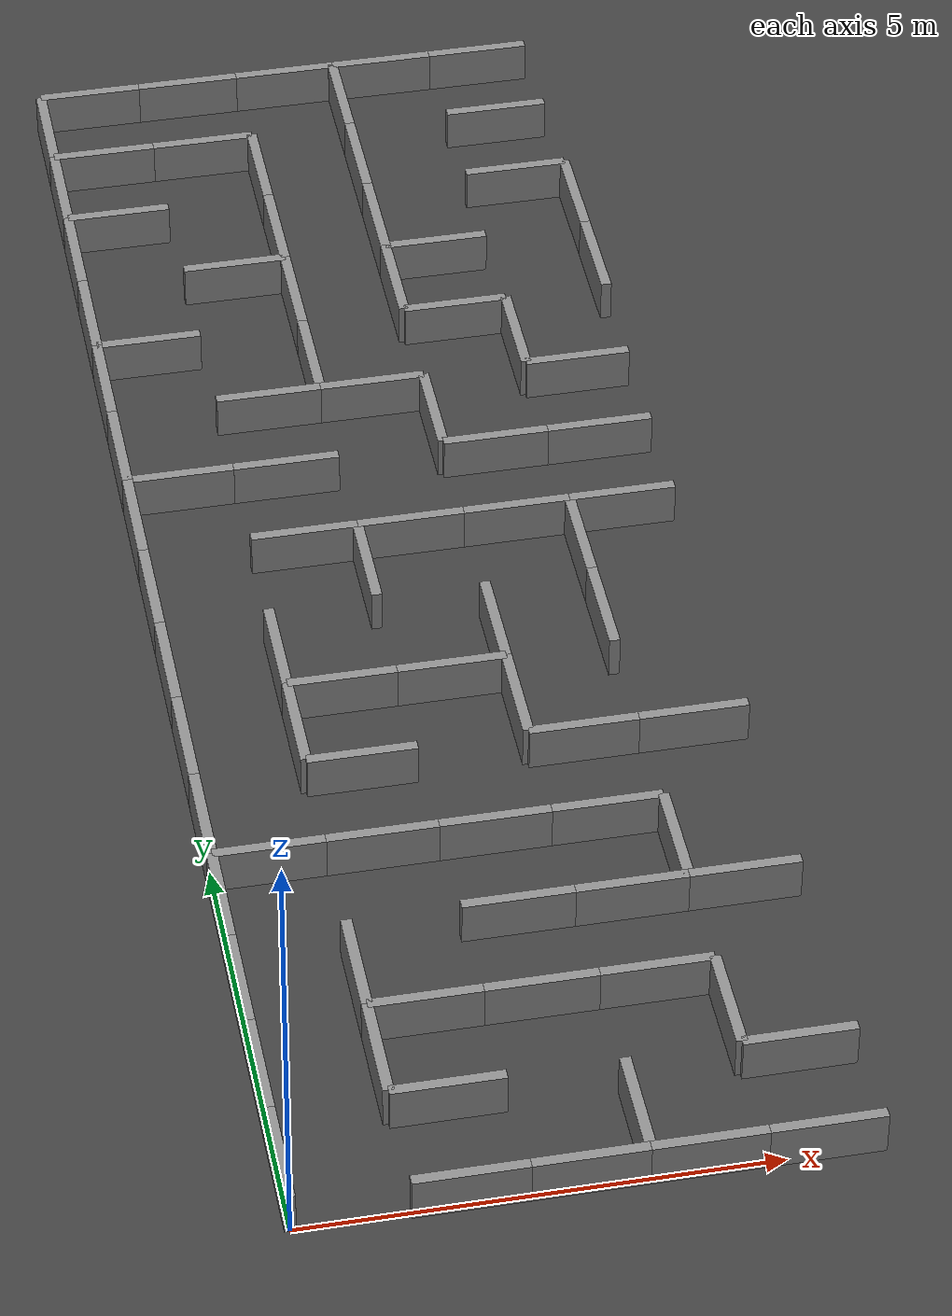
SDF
<sdf version="1.9">
 <world name="maze_world">
  <model name="ground_plane">
   <static>true</static>
   <link name="link">
    <collision name="col">
     <geometry><plane><normal>0 0 1</normal><size>500 500</size></plane></geometry>
     <surface><friction><ode><mu>1.0</mu><mu2>1.0</mu2></ode></friction></surface>
    </collision>
    <visual name="vis">
     <geometry><plane><normal>0 0 1</normal><size>500 500</size></plane></geometry>
     <material><ambient>0.25 0.25 0.25 1</ambient><diffuse>0.25 0.25 0.25 1</diffuse></material>
    </visual>
   </link>
  </model>
  <model name="maze_walls">
   <static>true</static>
   <link name="w0000">
    <pose>0.60000 16.80000 0.25000 0 0 0</pose>
    <collision name="col">
     <geometry><box><size>1.20000 0.12000 0.50000</size></box></geometry>
     <surface><friction><ode><mu>1.0</mu><mu2>1.0</mu2></ode></friction></surface>
    </collision>
    <visual name="vis">
     <geometry><box><size>1.20000 0.12000 0.50000</size></box></geometry>
     <material>
      <ambient>0.55 0.55 0.55 1</ambient>
      <diffuse>0.55 0.55 0.55 1</diffuse>
      <specular>0.1 0.1 0.1 1</specular>
     </material>
    </visual>
   </link>
   <link name="w0001">
    <pose>1.80000 16.80000 0.25000 0 0 0</pose>
    <collision name="col">
     <geometry><box><size>1.20000 0.12000 0.50000</size></box></geometry>
     <surface><friction><ode><mu>1.0</mu><mu2>1.0</mu2></ode></friction></surface>
    </collision>
    <visual name="vis">
     <geometry><box><size>1.20000 0.12000 0.50000</size></box></geometry>
     <material>
      <ambient>0.55 0.55 0.55 1</ambient>
      <diffuse>0.55 0.55 0.55 1</diffuse>
      <specular>0.1 0.1 0.1 1</specular>
     </material>
    </visual>
   </link>
   <link name="w0002">
    <pose>3.60000 17.40000 0.25000 0 0 0</pose>
    <collision name="col">
     <geometry><box><size>0.12000 1.20000 0.50000</size></box></geometry>
     <surface><friction><ode><mu>1.0</mu><mu2>1.0</mu2></ode></friction></surface>
    </collision>
    <visual name="vis">
     <geometry><box><size>0.12000 1.20000 0.50000</size></box></geometry>
     <material>
      <ambient>0.55 0.55 0.55 1</ambient>
      <diffuse>0.55 0.55 0.55 1</diffuse>
      <specular>0.1 0.1 0.1 1</specular>
     </material>
    </visual>
   </link>
   <link name="w0003">
    <pose>5.40000 16.80000 0.25000 0 0 0</pose>
    <collision name="col">
     <geometry><box><size>1.20000 0.12000 0.50000</size></box></geometry>
     <surface><friction><ode><mu>1.0</mu><mu2>1.0</mu2></ode></friction></surface>
    </collision>
    <visual name="vis">
     <geometry><box><size>1.20000 0.12000 0.50000</size></box></geometry>
     <material>
      <ambient>0.55 0.55 0.55 1</ambient>
      <diffuse>0.55 0.55 0.55 1</diffuse>
      <specular>0.1 0.1 0.1 1</specular>
     </material>
    </visual>
   </link>
   <link name="w0010">
    <pose>0.60000 15.60000 0.25000 0 0 0</pose>
    <collision name="col">
     <geometry><box><size>1.20000 0.12000 0.50000</size></box></geometry>
     <surface><friction><ode><mu>1.0</mu><mu2>1.0</mu2></ode></friction></surface>
    </collision>
    <visual name="vis">
     <geometry><box><size>1.20000 0.12000 0.50000</size></box></geometry>
     <material>
      <ambient>0.55 0.55 0.55 1</ambient>
      <diffuse>0.55 0.55 0.55 1</diffuse>
      <specular>0.1 0.1 0.1 1</specular>
     </material>
    </visual>
   </link>
   <link name="w0011">
    <pose>2.40000 16.20000 0.25000 0 0 0</pose>
    <collision name="col">
     <geometry><box><size>0.12000 1.20000 0.50000</size></box></geometry>
     <surface><friction><ode><mu>1.0</mu><mu2>1.0</mu2></ode></friction></surface>
    </collision>
    <visual name="vis">
     <geometry><box><size>0.12000 1.20000 0.50000</size></box></geometry>
     <material>
      <ambient>0.55 0.55 0.55 1</ambient>
      <diffuse>0.55 0.55 0.55 1</diffuse>
      <specular>0.1 0.1 0.1 1</specular>
     </material>
    </visual>
   </link>
   <link name="w0012">
    <pose>3.60000 16.20000 0.25000 0 0 0</pose>
    <collision name="col">
     <geometry><box><size>0.12000 1.20000 0.50000</size></box></geometry>
     <surface><friction><ode><mu>1.0</mu><mu2>1.0</mu2></ode></friction></surface>
    </collision>
    <visual name="vis">
     <geometry><box><size>0.12000 1.20000 0.50000</size></box></geometry>
     <material>
      <ambient>0.55 0.55 0.55 1</ambient>
      <diffuse>0.55 0.55 0.55 1</diffuse>
      <specular>0.1 0.1 0.1 1</specular>
     </material>
    </visual>
   </link>
   <link name="w0013">
    <pose>5.40000 15.60000 0.25000 0 0 0</pose>
    <collision name="col">
     <geometry><box><size>1.20000 0.12000 0.50000</size></box></geometry>
     <surface><friction><ode><mu>1.0</mu><mu2>1.0</mu2></ode></friction></surface>
    </collision>
    <visual name="vis">
     <geometry><box><size>1.20000 0.12000 0.50000</size></box></geometry>
     <material>
      <ambient>0.55 0.55 0.55 1</ambient>
      <diffuse>0.55 0.55 0.55 1</diffuse>
      <specular>0.1 0.1 0.1 1</specular>
     </material>
    </visual>
   </link>
   <link name="w0025">
    <pose>1.80000 14.40000 0.25000 0 0 0</pose>
    <collision name="col">
     <geometry><box><size>1.20000 0.12000 0.50000</size></box></geometry>
     <surface><friction><ode><mu>1.0</mu><mu2>1.0</mu2></ode></friction></surface>
    </collision>
    <visual name="vis">
     <geometry><box><size>1.20000 0.12000 0.50000</size></box></geometry>
     <material>
      <ambient>0.55 0.55 0.55 1</ambient>
      <diffuse>0.55 0.55 0.55 1</diffuse>
      <specular>0.1 0.1 0.1 1</specular>
     </material>
    </visual>
   </link>
   <link name="w0026">
    <pose>2.40000 15.00000 0.25000 0 0 0</pose>
    <collision name="col">
     <geometry><box><size>0.12000 1.20000 0.50000</size></box></geometry>
     <surface><friction><ode><mu>1.0</mu><mu2>1.0</mu2></ode></friction></surface>
    </collision>
    <visual name="vis">
     <geometry><box><size>0.12000 1.20000 0.50000</size></box></geometry>
     <material>
      <ambient>0.55 0.55 0.55 1</ambient>
      <diffuse>0.55 0.55 0.55 1</diffuse>
      <specular>0.1 0.1 0.1 1</specular>
     </material>
    </visual>
   </link>
   <link name="w0027">
    <pose>3.60000 15.00000 0.25000 0 0 0</pose>
    <collision name="col">
     <geometry><box><size>0.12000 1.20000 0.50000</size></box></geometry>
     <surface><friction><ode><mu>1.0</mu><mu2>1.0</mu2></ode></friction></surface>
    </collision>
    <visual name="vis">
     <geometry><box><size>0.12000 1.20000 0.50000</size></box></geometry>
     <material>
      <ambient>0.55 0.55 0.55 1</ambient>
      <diffuse>0.55 0.55 0.55 1</diffuse>
      <specular>0.1 0.1 0.1 1</specular>
     </material>
    </visual>
   </link>
   <link name="w0028">
    <pose>4.20000 14.40000 0.25000 0 0 0</pose>
    <collision name="col">
     <geometry><box><size>1.20000 0.12000 0.50000</size></box></geometry>
     <surface><friction><ode><mu>1.0</mu><mu2>1.0</mu2></ode></friction></surface>
    </collision>
    <visual name="vis">
     <geometry><box><size>1.20000 0.12000 0.50000</size></box></geometry>
     <material>
      <ambient>0.55 0.55 0.55 1</ambient>
      <diffuse>0.55 0.55 0.55 1</diffuse>
      <specular>0.1 0.1 0.1 1</specular>
     </material>
    </visual>
   </link>
   <link name="w0029">
    <pose>6.00000 15.00000 0.25000 0 0 0</pose>
    <collision name="col">
     <geometry><box><size>0.12000 1.20000 0.50000</size></box></geometry>
     <surface><friction><ode><mu>1.0</mu><mu2>1.0</mu2></ode></friction></surface>
    </collision>
    <visual name="vis">
     <geometry><box><size>0.12000 1.20000 0.50000</size></box></geometry>
     <material>
      <ambient>0.55 0.55 0.55 1</ambient>
      <diffuse>0.55 0.55 0.55 1</diffuse>
      <specular>0.1 0.1 0.1 1</specular>
     </material>
    </visual>
   </link>
   <link name="w0042">
    <pose>0.60000 13.20000 0.25000 0 0 0</pose>
    <collision name="col">
     <geometry><box><size>1.20000 0.12000 0.50000</size></box></geometry>
     <surface><friction><ode><mu>1.0</mu><mu2>1.0</mu2></ode></friction></surface>
    </collision>
    <visual name="vis">
     <geometry><box><size>1.20000 0.12000 0.50000</size></box></geometry>
     <material>
      <ambient>0.55 0.55 0.55 1</ambient>
      <diffuse>0.55 0.55 0.55 1</diffuse>
      <specular>0.1 0.1 0.1 1</specular>
     </material>
    </visual>
   </link>
   <link name="w0043">
    <pose>2.40000 13.80000 0.25000 0 0 0</pose>
    <collision name="col">
     <geometry><box><size>0.12000 1.20000 0.50000</size></box></geometry>
     <surface><friction><ode><mu>1.0</mu><mu2>1.0</mu2></ode></friction></surface>
    </collision>
    <visual name="vis">
     <geometry><box><size>0.12000 1.20000 0.50000</size></box></geometry>
     <material>
      <ambient>0.55 0.55 0.55 1</ambient>
      <diffuse>0.55 0.55 0.55 1</diffuse>
      <specular>0.1 0.1 0.1 1</specular>
     </material>
    </visual>
   </link>
   <link name="w0044">
    <pose>3.60000 13.80000 0.25000 0 0 0</pose>
    <collision name="col">
     <geometry><box><size>0.12000 1.20000 0.50000</size></box></geometry>
     <surface><friction><ode><mu>1.0</mu><mu2>1.0</mu2></ode></friction></surface>
    </collision>
    <visual name="vis">
     <geometry><box><size>0.12000 1.20000 0.50000</size></box></geometry>
     <material>
      <ambient>0.55 0.55 0.55 1</ambient>
      <diffuse>0.55 0.55 0.55 1</diffuse>
      <specular>0.1 0.1 0.1 1</specular>
     </material>
    </visual>
   </link>
   <link name="w0045">
    <pose>4.20000 13.20000 0.25000 0 0 0</pose>
    <collision name="col">
     <geometry><box><size>1.20000 0.12000 0.50000</size></box></geometry>
     <surface><friction><ode><mu>1.0</mu><mu2>1.0</mu2></ode></friction></surface>
    </collision>
    <visual name="vis">
     <geometry><box><size>1.20000 0.12000 0.50000</size></box></geometry>
     <material>
      <ambient>0.55 0.55 0.55 1</ambient>
      <diffuse>0.55 0.55 0.55 1</diffuse>
      <specular>0.1 0.1 0.1 1</specular>
     </material>
    </visual>
   </link>
   <link name="w0046">
    <pose>6.00000 13.80000 0.25000 0 0 0</pose>
    <collision name="col">
     <geometry><box><size>0.12000 1.20000 0.50000</size></box></geometry>
     <surface><friction><ode><mu>1.0</mu><mu2>1.0</mu2></ode></friction></surface>
    </collision>
    <visual name="vis">
     <geometry><box><size>0.12000 1.20000 0.50000</size></box></geometry>
     <material>
      <ambient>0.55 0.55 0.55 1</ambient>
      <diffuse>0.55 0.55 0.55 1</diffuse>
      <specular>0.1 0.1 0.1 1</specular>
     </material>
    </visual>
   </link>
   <link name="w0056">
    <pose>1.80000 12.00000 0.25000 0 0 0</pose>
    <collision name="col">
     <geometry><box><size>1.20000 0.12000 0.50000</size></box></geometry>
     <surface><friction><ode><mu>1.0</mu><mu2>1.0</mu2></ode></friction></surface>
    </collision>
    <visual name="vis">
     <geometry><box><size>1.20000 0.12000 0.50000</size></box></geometry>
     <material>
      <ambient>0.55 0.55 0.55 1</ambient>
      <diffuse>0.55 0.55 0.55 1</diffuse>
      <specular>0.1 0.1 0.1 1</specular>
     </material>
    </visual>
   </link>
   <link name="w0057">
    <pose>2.40000 12.60000 0.25000 0 0 0</pose>
    <collision name="col">
     <geometry><box><size>0.12000 1.20000 0.50000</size></box></geometry>
     <surface><friction><ode><mu>1.0</mu><mu2>1.0</mu2></ode></friction></surface>
    </collision>
    <visual name="vis">
     <geometry><box><size>0.12000 1.20000 0.50000</size></box></geometry>
     <material>
      <ambient>0.55 0.55 0.55 1</ambient>
      <diffuse>0.55 0.55 0.55 1</diffuse>
      <specular>0.1 0.1 0.1 1</specular>
     </material>
    </visual>
   </link>
   <link name="w0058">
    <pose>3.00000 12.00000 0.25000 0 0 0</pose>
    <collision name="col">
     <geometry><box><size>1.20000 0.12000 0.50000</size></box></geometry>
     <surface><friction><ode><mu>1.0</mu><mu2>1.0</mu2></ode></friction></surface>
    </collision>
    <visual name="vis">
     <geometry><box><size>1.20000 0.12000 0.50000</size></box></geometry>
     <material>
      <ambient>0.55 0.55 0.55 1</ambient>
      <diffuse>0.55 0.55 0.55 1</diffuse>
      <specular>0.1 0.1 0.1 1</specular>
     </material>
    </visual>
   </link>
   <link name="w0059">
    <pose>4.80000 12.60000 0.25000 0 0 0</pose>
    <collision name="col">
     <geometry><box><size>0.12000 1.20000 0.50000</size></box></geometry>
     <surface><friction><ode><mu>1.0</mu><mu2>1.0</mu2></ode></friction></surface>
    </collision>
    <visual name="vis">
     <geometry><box><size>0.12000 1.20000 0.50000</size></box></geometry>
     <material>
      <ambient>0.55 0.55 0.55 1</ambient>
      <diffuse>0.55 0.55 0.55 1</diffuse>
      <specular>0.1 0.1 0.1 1</specular>
     </material>
    </visual>
   </link>
   <link name="w0060">
    <pose>5.40000 12.00000 0.25000 0 0 0</pose>
    <collision name="col">
     <geometry><box><size>1.20000 0.12000 0.50000</size></box></geometry>
     <surface><friction><ode><mu>1.0</mu><mu2>1.0</mu2></ode></friction></surface>
    </collision>
    <visual name="vis">
     <geometry><box><size>1.20000 0.12000 0.50000</size></box></geometry>
     <material>
      <ambient>0.55 0.55 0.55 1</ambient>
      <diffuse>0.55 0.55 0.55 1</diffuse>
      <specular>0.1 0.1 0.1 1</specular>
     </material>
    </visual>
   </link>
   <link name="w0072">
    <pose>0.60000 10.80000 0.25000 0 0 0</pose>
    <collision name="col">
     <geometry><box><size>1.20000 0.12000 0.50000</size></box></geometry>
     <surface><friction><ode><mu>1.0</mu><mu2>1.0</mu2></ode></friction></surface>
    </collision>
    <visual name="vis">
     <geometry><box><size>1.20000 0.12000 0.50000</size></box></geometry>
     <material>
      <ambient>0.55 0.55 0.55 1</ambient>
      <diffuse>0.55 0.55 0.55 1</diffuse>
      <specular>0.1 0.1 0.1 1</specular>
     </material>
    </visual>
   </link>
   <link name="w0073">
    <pose>1.80000 10.80000 0.25000 0 0 0</pose>
    <collision name="col">
     <geometry><box><size>1.20000 0.12000 0.50000</size></box></geometry>
     <surface><friction><ode><mu>1.0</mu><mu2>1.0</mu2></ode></friction></surface>
    </collision>
    <visual name="vis">
     <geometry><box><size>1.20000 0.12000 0.50000</size></box></geometry>
     <material>
      <ambient>0.55 0.55 0.55 1</ambient>
      <diffuse>0.55 0.55 0.55 1</diffuse>
      <specular>0.1 0.1 0.1 1</specular>
     </material>
    </visual>
   </link>
   <link name="w0074">
    <pose>3.60000 11.40000 0.25000 0 0 0</pose>
    <collision name="col">
     <geometry><box><size>0.12000 1.20000 0.50000</size></box></geometry>
     <surface><friction><ode><mu>1.0</mu><mu2>1.0</mu2></ode></friction></surface>
    </collision>
    <visual name="vis">
     <geometry><box><size>0.12000 1.20000 0.50000</size></box></geometry>
     <material>
      <ambient>0.55 0.55 0.55 1</ambient>
      <diffuse>0.55 0.55 0.55 1</diffuse>
      <specular>0.1 0.1 0.1 1</specular>
     </material>
    </visual>
   </link>
   <link name="w0075">
    <pose>4.20000 10.80000 0.25000 0 0 0</pose>
    <collision name="col">
     <geometry><box><size>1.20000 0.12000 0.50000</size></box></geometry>
     <surface><friction><ode><mu>1.0</mu><mu2>1.0</mu2></ode></friction></surface>
    </collision>
    <visual name="vis">
     <geometry><box><size>1.20000 0.12000 0.50000</size></box></geometry>
     <material>
      <ambient>0.55 0.55 0.55 1</ambient>
      <diffuse>0.55 0.55 0.55 1</diffuse>
      <specular>0.1 0.1 0.1 1</specular>
     </material>
    </visual>
   </link>
   <link name="w0076">
    <pose>5.40000 10.80000 0.25000 0 0 0</pose>
    <collision name="col">
     <geometry><box><size>1.20000 0.12000 0.50000</size></box></geometry>
     <surface><friction><ode><mu>1.0</mu><mu2>1.0</mu2></ode></friction></surface>
    </collision>
    <visual name="vis">
     <geometry><box><size>1.20000 0.12000 0.50000</size></box></geometry>
     <material>
      <ambient>0.55 0.55 0.55 1</ambient>
      <diffuse>0.55 0.55 0.55 1</diffuse>
      <specular>0.1 0.1 0.1 1</specular>
     </material>
    </visual>
   </link>
   <link name="w0087">
    <pose>1.80000 9.60000 0.25000 0 0 0</pose>
    <collision name="col">
     <geometry><box><size>1.20000 0.12000 0.50000</size></box></geometry>
     <surface><friction><ode><mu>1.0</mu><mu2>1.0</mu2></ode></friction></surface>
    </collision>
    <visual name="vis">
     <geometry><box><size>1.20000 0.12000 0.50000</size></box></geometry>
     <material>
      <ambient>0.55 0.55 0.55 1</ambient>
      <diffuse>0.55 0.55 0.55 1</diffuse>
      <specular>0.1 0.1 0.1 1</specular>
     </material>
    </visual>
   </link>
   <link name="w0088">
    <pose>3.00000 9.60000 0.25000 0 0 0</pose>
    <collision name="col">
     <geometry><box><size>1.20000 0.12000 0.50000</size></box></geometry>
     <surface><friction><ode><mu>1.0</mu><mu2>1.0</mu2></ode></friction></surface>
    </collision>
    <visual name="vis">
     <geometry><box><size>1.20000 0.12000 0.50000</size></box></geometry>
     <material>
      <ambient>0.55 0.55 0.55 1</ambient>
      <diffuse>0.55 0.55 0.55 1</diffuse>
      <specular>0.1 0.1 0.1 1</specular>
     </material>
    </visual>
   </link>
   <link name="w0089">
    <pose>4.20000 9.60000 0.25000 0 0 0</pose>
    <collision name="col">
     <geometry><box><size>1.20000 0.12000 0.50000</size></box></geometry>
     <surface><friction><ode><mu>1.0</mu><mu2>1.0</mu2></ode></friction></surface>
    </collision>
    <visual name="vis">
     <geometry><box><size>1.20000 0.12000 0.50000</size></box></geometry>
     <material>
      <ambient>0.55 0.55 0.55 1</ambient>
      <diffuse>0.55 0.55 0.55 1</diffuse>
      <specular>0.1 0.1 0.1 1</specular>
     </material>
    </visual>
   </link>
   <link name="w0090">
    <pose>5.40000 9.60000 0.25000 0 0 0</pose>
    <collision name="col">
     <geometry><box><size>1.20000 0.12000 0.50000</size></box></geometry>
     <surface><friction><ode><mu>1.0</mu><mu2>1.0</mu2></ode></friction></surface>
    </collision>
    <visual name="vis">
     <geometry><box><size>1.20000 0.12000 0.50000</size></box></geometry>
     <material>
      <ambient>0.55 0.55 0.55 1</ambient>
      <diffuse>0.55 0.55 0.55 1</diffuse>
      <specular>0.1 0.1 0.1 1</specular>
     </material>
    </visual>
   </link>
   <link name="w0102">
    <pose>2.40000 9.00000 0.25000 0 0 0</pose>
    <collision name="col">
     <geometry><box><size>0.12000 1.20000 0.50000</size></box></geometry>
     <surface><friction><ode><mu>1.0</mu><mu2>1.0</mu2></ode></friction></surface>
    </collision>
    <visual name="vis">
     <geometry><box><size>0.12000 1.20000 0.50000</size></box></geometry>
     <material>
      <ambient>0.55 0.55 0.55 1</ambient>
      <diffuse>0.55 0.55 0.55 1</diffuse>
      <specular>0.1 0.1 0.1 1</specular>
     </material>
    </visual>
   </link>
   <link name="w0103">
    <pose>4.80000 9.00000 0.25000 0 0 0</pose>
    <collision name="col">
     <geometry><box><size>0.12000 1.20000 0.50000</size></box></geometry>
     <surface><friction><ode><mu>1.0</mu><mu2>1.0</mu2></ode></friction></surface>
    </collision>
    <visual name="vis">
     <geometry><box><size>0.12000 1.20000 0.50000</size></box></geometry>
     <material>
      <ambient>0.55 0.55 0.55 1</ambient>
      <diffuse>0.55 0.55 0.55 1</diffuse>
      <specular>0.1 0.1 0.1 1</specular>
     </material>
    </visual>
   </link>
   <link name="w0116">
    <pose>1.20000 7.80000 0.25000 0 0 0</pose>
    <collision name="col">
     <geometry><box><size>0.12000 1.20000 0.50000</size></box></geometry>
     <surface><friction><ode><mu>1.0</mu><mu2>1.0</mu2></ode></friction></surface>
    </collision>
    <visual name="vis">
     <geometry><box><size>0.12000 1.20000 0.50000</size></box></geometry>
     <material>
      <ambient>0.55 0.55 0.55 1</ambient>
      <diffuse>0.55 0.55 0.55 1</diffuse>
      <specular>0.1 0.1 0.1 1</specular>
     </material>
    </visual>
   </link>
   <link name="w0117">
    <pose>1.80000 7.20000 0.25000 0 0 0</pose>
    <collision name="col">
     <geometry><box><size>1.20000 0.12000 0.50000</size></box></geometry>
     <surface><friction><ode><mu>1.0</mu><mu2>1.0</mu2></ode></friction></surface>
    </collision>
    <visual name="vis">
     <geometry><box><size>1.20000 0.12000 0.50000</size></box></geometry>
     <material>
      <ambient>0.55 0.55 0.55 1</ambient>
      <diffuse>0.55 0.55 0.55 1</diffuse>
      <specular>0.1 0.1 0.1 1</specular>
     </material>
    </visual>
   </link>
   <link name="w0118">
    <pose>3.00000 7.20000 0.25000 0 0 0</pose>
    <collision name="col">
     <geometry><box><size>1.20000 0.12000 0.50000</size></box></geometry>
     <surface><friction><ode><mu>1.0</mu><mu2>1.0</mu2></ode></friction></surface>
    </collision>
    <visual name="vis">
     <geometry><box><size>1.20000 0.12000 0.50000</size></box></geometry>
     <material>
      <ambient>0.55 0.55 0.55 1</ambient>
      <diffuse>0.55 0.55 0.55 1</diffuse>
      <specular>0.1 0.1 0.1 1</specular>
     </material>
    </visual>
   </link>
   <link name="w0119">
    <pose>3.60000 7.80000 0.25000 0 0 0</pose>
    <collision name="col">
     <geometry><box><size>0.12000 1.20000 0.50000</size></box></geometry>
     <surface><friction><ode><mu>1.0</mu><mu2>1.0</mu2></ode></friction></surface>
    </collision>
    <visual name="vis">
     <geometry><box><size>0.12000 1.20000 0.50000</size></box></geometry>
     <material>
      <ambient>0.55 0.55 0.55 1</ambient>
      <diffuse>0.55 0.55 0.55 1</diffuse>
      <specular>0.1 0.1 0.1 1</specular>
     </material>
    </visual>
   </link>
   <link name="w0120">
    <pose>4.80000 7.80000 0.25000 0 0 0</pose>
    <collision name="col">
     <geometry><box><size>0.12000 1.20000 0.50000</size></box></geometry>
     <surface><friction><ode><mu>1.0</mu><mu2>1.0</mu2></ode></friction></surface>
    </collision>
    <visual name="vis">
     <geometry><box><size>0.12000 1.20000 0.50000</size></box></geometry>
     <material>
      <ambient>0.55 0.55 0.55 1</ambient>
      <diffuse>0.55 0.55 0.55 1</diffuse>
      <specular>0.1 0.1 0.1 1</specular>
     </material>
    </visual>
   </link>
   <link name="w0131">
    <pose>1.20000 6.60000 0.25000 0 0 0</pose>
    <collision name="col">
     <geometry><box><size>0.12000 1.20000 0.50000</size></box></geometry>
     <surface><friction><ode><mu>1.0</mu><mu2>1.0</mu2></ode></friction></surface>
    </collision>
    <visual name="vis">
     <geometry><box><size>0.12000 1.20000 0.50000</size></box></geometry>
     <material>
      <ambient>0.55 0.55 0.55 1</ambient>
      <diffuse>0.55 0.55 0.55 1</diffuse>
      <specular>0.1 0.1 0.1 1</specular>
     </material>
    </visual>
   </link>
   <link name="w0132">
    <pose>1.80000 6.00000 0.25000 0 0 0</pose>
    <collision name="col">
     <geometry><box><size>1.20000 0.12000 0.50000</size></box></geometry>
     <surface><friction><ode><mu>1.0</mu><mu2>1.0</mu2></ode></friction></surface>
    </collision>
    <visual name="vis">
     <geometry><box><size>1.20000 0.12000 0.50000</size></box></geometry>
     <material>
      <ambient>0.55 0.55 0.55 1</ambient>
      <diffuse>0.55 0.55 0.55 1</diffuse>
      <specular>0.1 0.1 0.1 1</specular>
     </material>
    </visual>
   </link>
   <link name="w0133">
    <pose>3.60000 6.60000 0.25000 0 0 0</pose>
    <collision name="col">
     <geometry><box><size>0.12000 1.20000 0.50000</size></box></geometry>
     <surface><friction><ode><mu>1.0</mu><mu2>1.0</mu2></ode></friction></surface>
    </collision>
    <visual name="vis">
     <geometry><box><size>0.12000 1.20000 0.50000</size></box></geometry>
     <material>
      <ambient>0.55 0.55 0.55 1</ambient>
      <diffuse>0.55 0.55 0.55 1</diffuse>
      <specular>0.1 0.1 0.1 1</specular>
     </material>
    </visual>
   </link>
   <link name="w0134">
    <pose>4.20000 6.00000 0.25000 0 0 0</pose>
    <collision name="col">
     <geometry><box><size>1.20000 0.12000 0.50000</size></box></geometry>
     <surface><friction><ode><mu>1.0</mu><mu2>1.0</mu2></ode></friction></surface>
    </collision>
    <visual name="vis">
     <geometry><box><size>1.20000 0.12000 0.50000</size></box></geometry>
     <material>
      <ambient>0.55 0.55 0.55 1</ambient>
      <diffuse>0.55 0.55 0.55 1</diffuse>
      <specular>0.1 0.1 0.1 1</specular>
     </material>
    </visual>
   </link>
   <link name="w0135">
    <pose>5.40000 6.00000 0.25000 0 0 0</pose>
    <collision name="col">
     <geometry><box><size>1.20000 0.12000 0.50000</size></box></geometry>
     <surface><friction><ode><mu>1.0</mu><mu2>1.0</mu2></ode></friction></surface>
    </collision>
    <visual name="vis">
     <geometry><box><size>1.20000 0.12000 0.50000</size></box></geometry>
     <material>
      <ambient>0.55 0.55 0.55 1</ambient>
      <diffuse>0.55 0.55 0.55 1</diffuse>
      <specular>0.1 0.1 0.1 1</specular>
     </material>
    </visual>
   </link>
   <link name="w0146">
    <pose>0.60000 4.80000 0.25000 0 0 0</pose>
    <collision name="col">
     <geometry><box><size>1.20000 0.12000 0.50000</size></box></geometry>
     <surface><friction><ode><mu>1.0</mu><mu2>1.0</mu2></ode></friction></surface>
    </collision>
    <visual name="vis">
     <geometry><box><size>1.20000 0.12000 0.50000</size></box></geometry>
     <material>
      <ambient>0.55 0.55 0.55 1</ambient>
      <diffuse>0.55 0.55 0.55 1</diffuse>
      <specular>0.1 0.1 0.1 1</specular>
     </material>
    </visual>
   </link>
   <link name="w0147">
    <pose>1.80000 4.80000 0.25000 0 0 0</pose>
    <collision name="col">
     <geometry><box><size>1.20000 0.12000 0.50000</size></box></geometry>
     <surface><friction><ode><mu>1.0</mu><mu2>1.0</mu2></ode></friction></surface>
    </collision>
    <visual name="vis">
     <geometry><box><size>1.20000 0.12000 0.50000</size></box></geometry>
     <material>
      <ambient>0.55 0.55 0.55 1</ambient>
      <diffuse>0.55 0.55 0.55 1</diffuse>
      <specular>0.1 0.1 0.1 1</specular>
     </material>
    </visual>
   </link>
   <link name="w0148">
    <pose>3.00000 4.80000 0.25000 0 0 0</pose>
    <collision name="col">
     <geometry><box><size>1.20000 0.12000 0.50000</size></box></geometry>
     <surface><friction><ode><mu>1.0</mu><mu2>1.0</mu2></ode></friction></surface>
    </collision>
    <visual name="vis">
     <geometry><box><size>1.20000 0.12000 0.50000</size></box></geometry>
     <material>
      <ambient>0.55 0.55 0.55 1</ambient>
      <diffuse>0.55 0.55 0.55 1</diffuse>
      <specular>0.1 0.1 0.1 1</specular>
     </material>
    </visual>
   </link>
   <link name="w0149">
    <pose>4.20000 4.80000 0.25000 0 0 0</pose>
    <collision name="col">
     <geometry><box><size>1.20000 0.12000 0.50000</size></box></geometry>
     <surface><friction><ode><mu>1.0</mu><mu2>1.0</mu2></ode></friction></surface>
    </collision>
    <visual name="vis">
     <geometry><box><size>1.20000 0.12000 0.50000</size></box></geometry>
     <material>
      <ambient>0.55 0.55 0.55 1</ambient>
      <diffuse>0.55 0.55 0.55 1</diffuse>
      <specular>0.1 0.1 0.1 1</specular>
     </material>
    </visual>
   </link>
   <link name="w0163">
    <pose>3.00000 3.60000 0.25000 0 0 0</pose>
    <collision name="col">
     <geometry><box><size>1.20000 0.12000 0.50000</size></box></geometry>
     <surface><friction><ode><mu>1.0</mu><mu2>1.0</mu2></ode></friction></surface>
    </collision>
    <visual name="vis">
     <geometry><box><size>1.20000 0.12000 0.50000</size></box></geometry>
     <material>
      <ambient>0.55 0.55 0.55 1</ambient>
      <diffuse>0.55 0.55 0.55 1</diffuse>
      <specular>0.1 0.1 0.1 1</specular>
     </material>
    </visual>
   </link>
   <link name="w0164">
    <pose>4.20000 3.60000 0.25000 0 0 0</pose>
    <collision name="col">
     <geometry><box><size>1.20000 0.12000 0.50000</size></box></geometry>
     <surface><friction><ode><mu>1.0</mu><mu2>1.0</mu2></ode></friction></surface>
    </collision>
    <visual name="vis">
     <geometry><box><size>1.20000 0.12000 0.50000</size></box></geometry>
     <material>
      <ambient>0.55 0.55 0.55 1</ambient>
      <diffuse>0.55 0.55 0.55 1</diffuse>
      <specular>0.1 0.1 0.1 1</specular>
     </material>
    </visual>
   </link>
   <link name="w0165">
    <pose>4.80000 4.20000 0.25000 0 0 0</pose>
    <collision name="col">
     <geometry><box><size>0.12000 1.20000 0.50000</size></box></geometry>
     <surface><friction><ode><mu>1.0</mu><mu2>1.0</mu2></ode></friction></surface>
    </collision>
    <visual name="vis">
     <geometry><box><size>0.12000 1.20000 0.50000</size></box></geometry>
     <material>
      <ambient>0.55 0.55 0.55 1</ambient>
      <diffuse>0.55 0.55 0.55 1</diffuse>
      <specular>0.1 0.1 0.1 1</specular>
     </material>
    </visual>
   </link>
   <link name="w0166">
    <pose>5.40000 3.60000 0.25000 0 0 0</pose>
    <collision name="col">
     <geometry><box><size>1.20000 0.12000 0.50000</size></box></geometry>
     <surface><friction><ode><mu>1.0</mu><mu2>1.0</mu2></ode></friction></surface>
    </collision>
    <visual name="vis">
     <geometry><box><size>1.20000 0.12000 0.50000</size></box></geometry>
     <material>
      <ambient>0.55 0.55 0.55 1</ambient>
      <diffuse>0.55 0.55 0.55 1</diffuse>
      <specular>0.1 0.1 0.1 1</specular>
     </material>
    </visual>
   </link>
   <link name="w0176">
    <pose>1.20000 3.00000 0.25000 0 0 0</pose>
    <collision name="col">
     <geometry><box><size>0.12000 1.20000 0.50000</size></box></geometry>
     <surface><friction><ode><mu>1.0</mu><mu2>1.0</mu2></ode></friction></surface>
    </collision>
    <visual name="vis">
     <geometry><box><size>0.12000 1.20000 0.50000</size></box></geometry>
     <material>
      <ambient>0.55 0.55 0.55 1</ambient>
      <diffuse>0.55 0.55 0.55 1</diffuse>
      <specular>0.1 0.1 0.1 1</specular>
     </material>
    </visual>
   </link>
   <link name="w0177">
    <pose>1.80000 2.40000 0.25000 0 0 0</pose>
    <collision name="col">
     <geometry><box><size>1.20000 0.12000 0.50000</size></box></geometry>
     <surface><friction><ode><mu>1.0</mu><mu2>1.0</mu2></ode></friction></surface>
    </collision>
    <visual name="vis">
     <geometry><box><size>1.20000 0.12000 0.50000</size></box></geometry>
     <material>
      <ambient>0.55 0.55 0.55 1</ambient>
      <diffuse>0.55 0.55 0.55 1</diffuse>
      <specular>0.1 0.1 0.1 1</specular>
     </material>
    </visual>
   </link>
   <link name="w0178">
    <pose>3.00000 2.40000 0.25000 0 0 0</pose>
    <collision name="col">
     <geometry><box><size>1.20000 0.12000 0.50000</size></box></geometry>
     <surface><friction><ode><mu>1.0</mu><mu2>1.0</mu2></ode></friction></surface>
    </collision>
    <visual name="vis">
     <geometry><box><size>1.20000 0.12000 0.50000</size></box></geometry>
     <material>
      <ambient>0.55 0.55 0.55 1</ambient>
      <diffuse>0.55 0.55 0.55 1</diffuse>
      <specular>0.1 0.1 0.1 1</specular>
     </material>
    </visual>
   </link>
   <link name="w0179">
    <pose>4.20000 2.40000 0.25000 0 0 0</pose>
    <collision name="col">
     <geometry><box><size>1.20000 0.12000 0.50000</size></box></geometry>
     <surface><friction><ode><mu>1.0</mu><mu2>1.0</mu2></ode></friction></surface>
    </collision>
    <visual name="vis">
     <geometry><box><size>1.20000 0.12000 0.50000</size></box></geometry>
     <material>
      <ambient>0.55 0.55 0.55 1</ambient>
      <diffuse>0.55 0.55 0.55 1</diffuse>
      <specular>0.1 0.1 0.1 1</specular>
     </material>
    </visual>
   </link>
   <link name="w0193">
    <pose>1.20000 1.80000 0.25000 0 0 0</pose>
    <collision name="col">
     <geometry><box><size>0.12000 1.20000 0.50000</size></box></geometry>
     <surface><friction><ode><mu>1.0</mu><mu2>1.0</mu2></ode></friction></surface>
    </collision>
    <visual name="vis">
     <geometry><box><size>0.12000 1.20000 0.50000</size></box></geometry>
     <material>
      <ambient>0.55 0.55 0.55 1</ambient>
      <diffuse>0.55 0.55 0.55 1</diffuse>
      <specular>0.1 0.1 0.1 1</specular>
     </material>
    </visual>
   </link>
   <link name="w0194">
    <pose>1.80000 1.20000 0.25000 0 0 0</pose>
    <collision name="col">
     <geometry><box><size>1.20000 0.12000 0.50000</size></box></geometry>
     <surface><friction><ode><mu>1.0</mu><mu2>1.0</mu2></ode></friction></surface>
    </collision>
    <visual name="vis">
     <geometry><box><size>1.20000 0.12000 0.50000</size></box></geometry>
     <material>
      <ambient>0.55 0.55 0.55 1</ambient>
      <diffuse>0.55 0.55 0.55 1</diffuse>
      <specular>0.1 0.1 0.1 1</specular>
     </material>
    </visual>
   </link>
   <link name="w0195">
    <pose>4.80000 1.80000 0.25000 0 0 0</pose>
    <collision name="col">
     <geometry><box><size>0.12000 1.20000 0.50000</size></box></geometry>
     <surface><friction><ode><mu>1.0</mu><mu2>1.0</mu2></ode></friction></surface>
    </collision>
    <visual name="vis">
     <geometry><box><size>0.12000 1.20000 0.50000</size></box></geometry>
     <material>
      <ambient>0.55 0.55 0.55 1</ambient>
      <diffuse>0.55 0.55 0.55 1</diffuse>
      <specular>0.1 0.1 0.1 1</specular>
     </material>
    </visual>
   </link>
   <link name="w0196">
    <pose>5.40000 1.20000 0.25000 0 0 0</pose>
    <collision name="col">
     <geometry><box><size>1.20000 0.12000 0.50000</size></box></geometry>
     <surface><friction><ode><mu>1.0</mu><mu2>1.0</mu2></ode></friction></surface>
    </collision>
    <visual name="vis">
     <geometry><box><size>1.20000 0.12000 0.50000</size></box></geometry>
     <material>
      <ambient>0.55 0.55 0.55 1</ambient>
      <diffuse>0.55 0.55 0.55 1</diffuse>
      <specular>0.1 0.1 0.1 1</specular>
     </material>
    </visual>
   </link>
   <link name="w0208">
    <pose>1.80000 0.00000 0.25000 0 0 0</pose>
    <collision name="col">
     <geometry><box><size>1.20000 0.12000 0.50000</size></box></geometry>
     <surface><friction><ode><mu>1.0</mu><mu2>1.0</mu2></ode></friction></surface>
    </collision>
    <visual name="vis">
     <geometry><box><size>1.20000 0.12000 0.50000</size></box></geometry>
     <material>
      <ambient>0.55 0.55 0.55 1</ambient>
      <diffuse>0.55 0.55 0.55 1</diffuse>
      <specular>0.1 0.1 0.1 1</specular>
     </material>
    </visual>
   </link>
   <link name="w0209">
    <pose>3.00000 0.00000 0.25000 0 0 0</pose>
    <collision name="col">
     <geometry><box><size>1.20000 0.12000 0.50000</size></box></geometry>
     <surface><friction><ode><mu>1.0</mu><mu2>1.0</mu2></ode></friction></surface>
    </collision>
    <visual name="vis">
     <geometry><box><size>1.20000 0.12000 0.50000</size></box></geometry>
     <material>
      <ambient>0.55 0.55 0.55 1</ambient>
      <diffuse>0.55 0.55 0.55 1</diffuse>
      <specular>0.1 0.1 0.1 1</specular>
     </material>
    </visual>
   </link>
   <link name="w0210">
    <pose>3.60000 0.60000 0.25000 0 0 0</pose>
    <collision name="col">
     <geometry><box><size>0.12000 1.20000 0.50000</size></box></geometry>
     <surface><friction><ode><mu>1.0</mu><mu2>1.0</mu2></ode></friction></surface>
    </collision>
    <visual name="vis">
     <geometry><box><size>0.12000 1.20000 0.50000</size></box></geometry>
     <material>
      <ambient>0.55 0.55 0.55 1</ambient>
      <diffuse>0.55 0.55 0.55 1</diffuse>
      <specular>0.1 0.1 0.1 1</specular>
     </material>
    </visual>
   </link>
   <link name="w0211">
    <pose>4.20000 0.00000 0.25000 0 0 0</pose>
    <collision name="col">
     <geometry><box><size>1.20000 0.12000 0.50000</size></box></geometry>
     <surface><friction><ode><mu>1.0</mu><mu2>1.0</mu2></ode></friction></surface>
    </collision>
    <visual name="vis">
     <geometry><box><size>1.20000 0.12000 0.50000</size></box></geometry>
     <material>
      <ambient>0.55 0.55 0.55 1</ambient>
      <diffuse>0.55 0.55 0.55 1</diffuse>
      <specular>0.1 0.1 0.1 1</specular>
     </material>
    </visual>
   </link>
   <link name="w0212">
    <pose>5.40000 0.00000 0.25000 0 0 0</pose>
    <collision name="col">
     <geometry><box><size>1.20000 0.12000 0.50000</size></box></geometry>
     <surface><friction><ode><mu>1.0</mu><mu2>1.0</mu2></ode></friction></surface>
    </collision>
    <visual name="vis">
     <geometry><box><size>1.20000 0.12000 0.50000</size></box></geometry>
     <material>
      <ambient>0.55 0.55 0.55 1</ambient>
      <diffuse>0.55 0.55 0.55 1</diffuse>
      <specular>0.1 0.1 0.1 1</specular>
     </material>
    </visual>
   </link>
   <link name="w0225">
    <pose>0.60000 18.00000 0.25000 0 0 0</pose>
    <collision name="col">
     <geometry><box><size>1.20000 0.12000 0.50000</size></box></geometry>
     <surface><friction><ode><mu>1.0</mu><mu2>1.0</mu2></ode></friction></surface>
    </collision>
    <visual name="vis">
     <geometry><box><size>1.20000 0.12000 0.50000</size></box></geometry>
     <material>
      <ambient>0.55 0.55 0.55 1</ambient>
      <diffuse>0.55 0.55 0.55 1</diffuse>
      <specular>0.1 0.1 0.1 1</specular>
     </material>
    </visual>
   </link>
   <link name="w0226">
    <pose>1.80000 18.00000 0.25000 0 0 0</pose>
    <collision name="col">
     <geometry><box><size>1.20000 0.12000 0.50000</size></box></geometry>
     <surface><friction><ode><mu>1.0</mu><mu2>1.0</mu2></ode></friction></surface>
    </collision>
    <visual name="vis">
     <geometry><box><size>1.20000 0.12000 0.50000</size></box></geometry>
     <material>
      <ambient>0.55 0.55 0.55 1</ambient>
      <diffuse>0.55 0.55 0.55 1</diffuse>
      <specular>0.1 0.1 0.1 1</specular>
     </material>
    </visual>
   </link>
   <link name="w0227">
    <pose>3.00000 18.00000 0.25000 0 0 0</pose>
    <collision name="col">
     <geometry><box><size>1.20000 0.12000 0.50000</size></box></geometry>
     <surface><friction><ode><mu>1.0</mu><mu2>1.0</mu2></ode></friction></surface>
    </collision>
    <visual name="vis">
     <geometry><box><size>1.20000 0.12000 0.50000</size></box></geometry>
     <material>
      <ambient>0.55 0.55 0.55 1</ambient>
      <diffuse>0.55 0.55 0.55 1</diffuse>
      <specular>0.1 0.1 0.1 1</specular>
     </material>
    </visual>
   </link>
   <link name="w0228">
    <pose>4.20000 18.00000 0.25000 0 0 0</pose>
    <collision name="col">
     <geometry><box><size>1.20000 0.12000 0.50000</size></box></geometry>
     <surface><friction><ode><mu>1.0</mu><mu2>1.0</mu2></ode></friction></surface>
    </collision>
    <visual name="vis">
     <geometry><box><size>1.20000 0.12000 0.50000</size></box></geometry>
     <material>
      <ambient>0.55 0.55 0.55 1</ambient>
      <diffuse>0.55 0.55 0.55 1</diffuse>
      <specular>0.1 0.1 0.1 1</specular>
     </material>
    </visual>
   </link>
   <link name="w0229">
    <pose>5.40000 18.00000 0.25000 0 0 0</pose>
    <collision name="col">
     <geometry><box><size>1.20000 0.12000 0.50000</size></box></geometry>
     <surface><friction><ode><mu>1.0</mu><mu2>1.0</mu2></ode></friction></surface>
    </collision>
    <visual name="vis">
     <geometry><box><size>1.20000 0.12000 0.50000</size></box></geometry>
     <material>
      <ambient>0.55 0.55 0.55 1</ambient>
      <diffuse>0.55 0.55 0.55 1</diffuse>
      <specular>0.1 0.1 0.1 1</specular>
     </material>
    </visual>
   </link>
   <link name="w0239">
    <pose>0.00000 17.40000 0.25000 0 0 0</pose>
    <collision name="col">
     <geometry><box><size>0.12000 1.20000 0.50000</size></box></geometry>
     <surface><friction><ode><mu>1.0</mu><mu2>1.0</mu2></ode></friction></surface>
    </collision>
    <visual name="vis">
     <geometry><box><size>0.12000 1.20000 0.50000</size></box></geometry>
     <material>
      <ambient>0.55 0.55 0.55 1</ambient>
      <diffuse>0.55 0.55 0.55 1</diffuse>
      <specular>0.1 0.1 0.1 1</specular>
     </material>
    </visual>
   </link>
   <link name="w0240">
    <pose>0.00000 16.20000 0.25000 0 0 0</pose>
    <collision name="col">
     <geometry><box><size>0.12000 1.20000 0.50000</size></box></geometry>
     <surface><friction><ode><mu>1.0</mu><mu2>1.0</mu2></ode></friction></surface>
    </collision>
    <visual name="vis">
     <geometry><box><size>0.12000 1.20000 0.50000</size></box></geometry>
     <material>
      <ambient>0.55 0.55 0.55 1</ambient>
      <diffuse>0.55 0.55 0.55 1</diffuse>
      <specular>0.1 0.1 0.1 1</specular>
     </material>
    </visual>
   </link>
   <link name="w0241">
    <pose>0.00000 15.00000 0.25000 0 0 0</pose>
    <collision name="col">
     <geometry><box><size>0.12000 1.20000 0.50000</size></box></geometry>
     <surface><friction><ode><mu>1.0</mu><mu2>1.0</mu2></ode></friction></surface>
    </collision>
    <visual name="vis">
     <geometry><box><size>0.12000 1.20000 0.50000</size></box></geometry>
     <material>
      <ambient>0.55 0.55 0.55 1</ambient>
      <diffuse>0.55 0.55 0.55 1</diffuse>
      <specular>0.1 0.1 0.1 1</specular>
     </material>
    </visual>
   </link>
   <link name="w0242">
    <pose>0.00000 13.80000 0.25000 0 0 0</pose>
    <collision name="col">
     <geometry><box><size>0.12000 1.20000 0.50000</size></box></geometry>
     <surface><friction><ode><mu>1.0</mu><mu2>1.0</mu2></ode></friction></surface>
    </collision>
    <visual name="vis">
     <geometry><box><size>0.12000 1.20000 0.50000</size></box></geometry>
     <material>
      <ambient>0.55 0.55 0.55 1</ambient>
      <diffuse>0.55 0.55 0.55 1</diffuse>
      <specular>0.1 0.1 0.1 1</specular>
     </material>
    </visual>
   </link>
   <link name="w0243">
    <pose>0.00000 12.60000 0.25000 0 0 0</pose>
    <collision name="col">
     <geometry><box><size>0.12000 1.20000 0.50000</size></box></geometry>
     <surface><friction><ode><mu>1.0</mu><mu2>1.0</mu2></ode></friction></surface>
    </collision>
    <visual name="vis">
     <geometry><box><size>0.12000 1.20000 0.50000</size></box></geometry>
     <material>
      <ambient>0.55 0.55 0.55 1</ambient>
      <diffuse>0.55 0.55 0.55 1</diffuse>
      <specular>0.1 0.1 0.1 1</specular>
     </material>
    </visual>
   </link>
   <link name="w0244">
    <pose>0.00000 11.40000 0.25000 0 0 0</pose>
    <collision name="col">
     <geometry><box><size>0.12000 1.20000 0.50000</size></box></geometry>
     <surface><friction><ode><mu>1.0</mu><mu2>1.0</mu2></ode></friction></surface>
    </collision>
    <visual name="vis">
     <geometry><box><size>0.12000 1.20000 0.50000</size></box></geometry>
     <material>
      <ambient>0.55 0.55 0.55 1</ambient>
      <diffuse>0.55 0.55 0.55 1</diffuse>
      <specular>0.1 0.1 0.1 1</specular>
     </material>
    </visual>
   </link>
   <link name="w0245">
    <pose>0.00000 10.20000 0.25000 0 0 0</pose>
    <collision name="col">
     <geometry><box><size>0.12000 1.20000 0.50000</size></box></geometry>
     <surface><friction><ode><mu>1.0</mu><mu2>1.0</mu2></ode></friction></surface>
    </collision>
    <visual name="vis">
     <geometry><box><size>0.12000 1.20000 0.50000</size></box></geometry>
     <material>
      <ambient>0.55 0.55 0.55 1</ambient>
      <diffuse>0.55 0.55 0.55 1</diffuse>
      <specular>0.1 0.1 0.1 1</specular>
     </material>
    </visual>
   </link>
   <link name="w0246">
    <pose>0.00000 9.00000 0.25000 0 0 0</pose>
    <collision name="col">
     <geometry><box><size>0.12000 1.20000 0.50000</size></box></geometry>
     <surface><friction><ode><mu>1.0</mu><mu2>1.0</mu2></ode></friction></surface>
    </collision>
    <visual name="vis">
     <geometry><box><size>0.12000 1.20000 0.50000</size></box></geometry>
     <material>
      <ambient>0.55 0.55 0.55 1</ambient>
      <diffuse>0.55 0.55 0.55 1</diffuse>
      <specular>0.1 0.1 0.1 1</specular>
     </material>
    </visual>
   </link>
   <link name="w0247">
    <pose>0.00000 7.80000 0.25000 0 0 0</pose>
    <collision name="col">
     <geometry><box><size>0.12000 1.20000 0.50000</size></box></geometry>
     <surface><friction><ode><mu>1.0</mu><mu2>1.0</mu2></ode></friction></surface>
    </collision>
    <visual name="vis">
     <geometry><box><size>0.12000 1.20000 0.50000</size></box></geometry>
     <material>
      <ambient>0.55 0.55 0.55 1</ambient>
      <diffuse>0.55 0.55 0.55 1</diffuse>
      <specular>0.1 0.1 0.1 1</specular>
     </material>
    </visual>
   </link>
   <link name="w0248">
    <pose>0.00000 6.60000 0.25000 0 0 0</pose>
    <collision name="col">
     <geometry><box><size>0.12000 1.20000 0.50000</size></box></geometry>
     <surface><friction><ode><mu>1.0</mu><mu2>1.0</mu2></ode></friction></surface>
    </collision>
    <visual name="vis">
     <geometry><box><size>0.12000 1.20000 0.50000</size></box></geometry>
     <material>
      <ambient>0.55 0.55 0.55 1</ambient>
      <diffuse>0.55 0.55 0.55 1</diffuse>
      <specular>0.1 0.1 0.1 1</specular>
     </material>
    </visual>
   </link>
   <link name="w0249">
    <pose>0.00000 5.40000 0.25000 0 0 0</pose>
    <collision name="col">
     <geometry><box><size>0.12000 1.20000 0.50000</size></box></geometry>
     <surface><friction><ode><mu>1.0</mu><mu2>1.0</mu2></ode></friction></surface>
    </collision>
    <visual name="vis">
     <geometry><box><size>0.12000 1.20000 0.50000</size></box></geometry>
     <material>
      <ambient>0.55 0.55 0.55 1</ambient>
      <diffuse>0.55 0.55 0.55 1</diffuse>
      <specular>0.1 0.1 0.1 1</specular>
     </material>
    </visual>
   </link>
   <link name="w0250">
    <pose>0.00000 4.20000 0.25000 0 0 0</pose>
    <collision name="col">
     <geometry><box><size>0.12000 1.20000 0.50000</size></box></geometry>
     <surface><friction><ode><mu>1.0</mu><mu2>1.0</mu2></ode></friction></surface>
    </collision>
    <visual name="vis">
     <geometry><box><size>0.12000 1.20000 0.50000</size></box></geometry>
     <material>
      <ambient>0.55 0.55 0.55 1</ambient>
      <diffuse>0.55 0.55 0.55 1</diffuse>
      <specular>0.1 0.1 0.1 1</specular>
     </material>
    </visual>
   </link>
   <link name="w0251">
    <pose>0.00000 3.00000 0.25000 0 0 0</pose>
    <collision name="col">
     <geometry><box><size>0.12000 1.20000 0.50000</size></box></geometry>
     <surface><friction><ode><mu>1.0</mu><mu2>1.0</mu2></ode></friction></surface>
    </collision>
    <visual name="vis">
     <geometry><box><size>0.12000 1.20000 0.50000</size></box></geometry>
     <material>
      <ambient>0.55 0.55 0.55 1</ambient>
      <diffuse>0.55 0.55 0.55 1</diffuse>
      <specular>0.1 0.1 0.1 1</specular>
     </material>
    </visual>
   </link>
   <link name="w0252">
    <pose>0.00000 1.80000 0.25000 0 0 0</pose>
    <collision name="col">
     <geometry><box><size>0.12000 1.20000 0.50000</size></box></geometry>
     <surface><friction><ode><mu>1.0</mu><mu2>1.0</mu2></ode></friction></surface>
    </collision>
    <visual name="vis">
     <geometry><box><size>0.12000 1.20000 0.50000</size></box></geometry>
     <material>
      <ambient>0.55 0.55 0.55 1</ambient>
      <diffuse>0.55 0.55 0.55 1</diffuse>
      <specular>0.1 0.1 0.1 1</specular>
     </material>
    </visual>
   </link>
   <link name="w0253">
    <pose>0.00000 0.60000 0.25000 0 0 0</pose>
    <collision name="col">
     <geometry><box><size>0.12000 1.20000 0.50000</size></box></geometry>
     <surface><friction><ode><mu>1.0</mu><mu2>1.0</mu2></ode></friction></surface>
    </collision>
    <visual name="vis">
     <geometry><box><size>0.12000 1.20000 0.50000</size></box></geometry>
     <material>
      <ambient>0.55 0.55 0.55 1</ambient>
      <diffuse>0.55 0.55 0.55 1</diffuse>
      <specular>0.1 0.1 0.1 1</specular>
     </material>
    </visual>
   </link>
  </model>
 </world>
</sdf>
